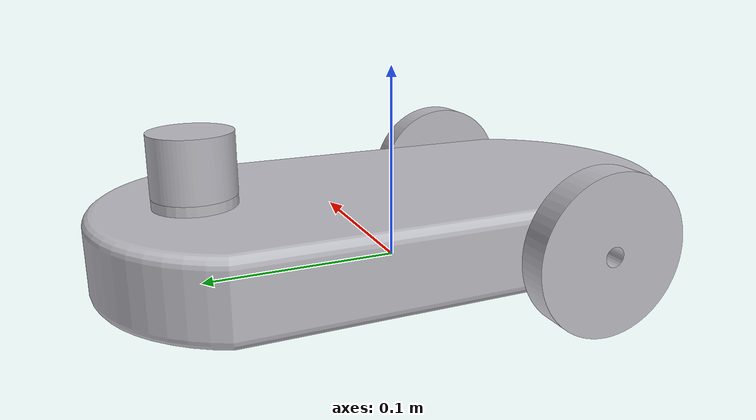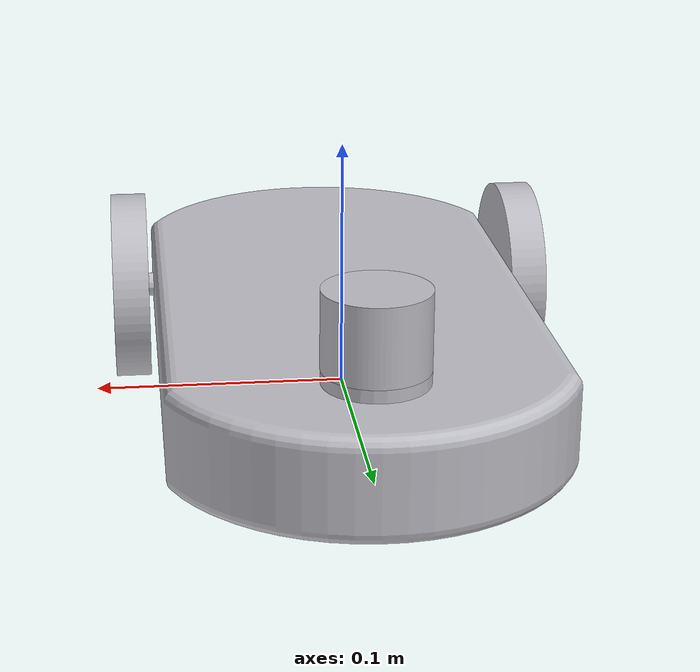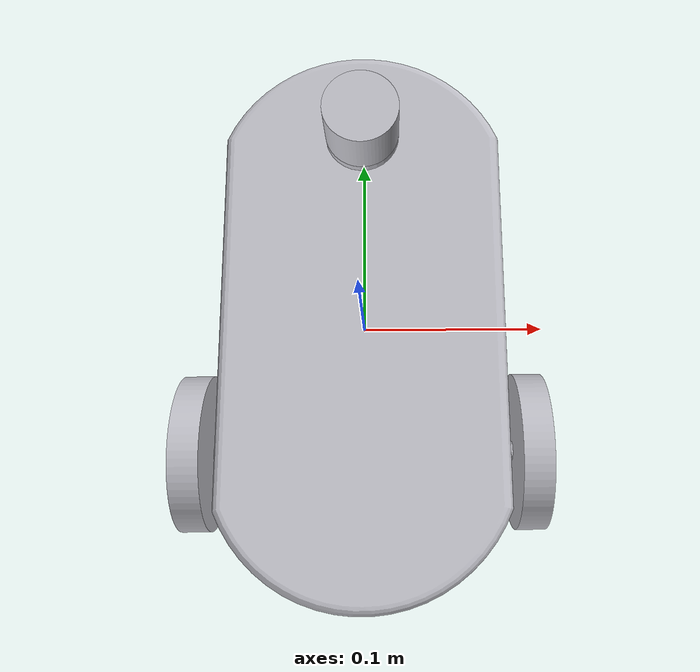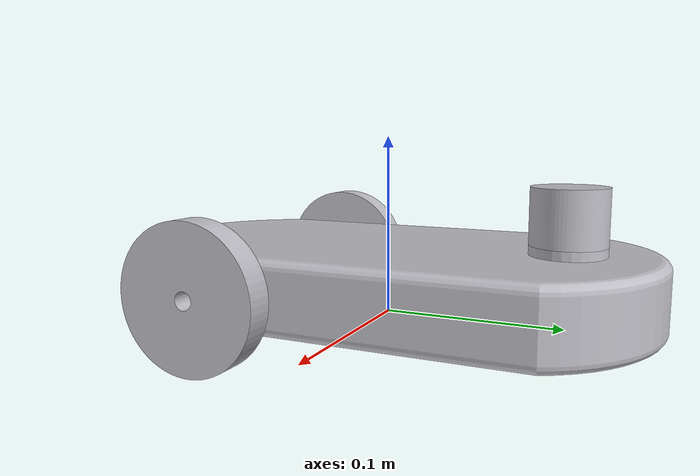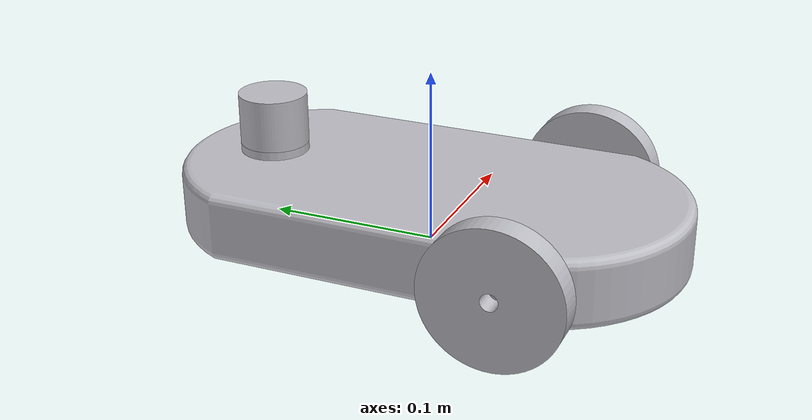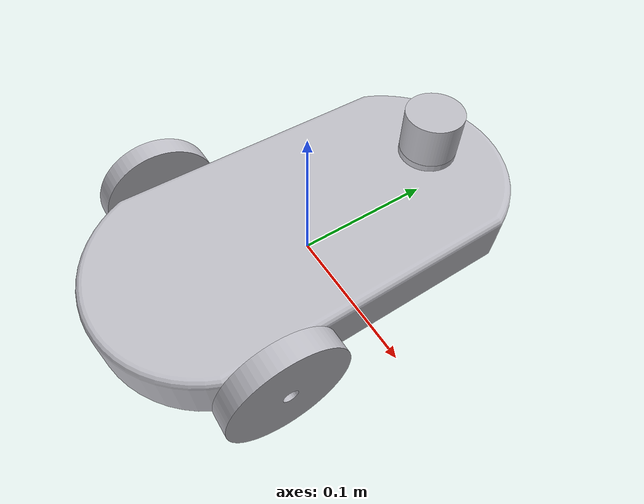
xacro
<?xml version="1.0" ?>
<robot name="car" xmlns:xacro="http://www.ros.org/wiki/xacro">

<xacro:include filename="$(find car_description)/urdf/materials.xacro" />
<xacro:include filename="$(find car_description)/urdf/car.trans" />
<xacro:include filename="$(find car_description)/urdf/car.gazebo" />
<link name="base_link">
  <inertial>
    <origin xyz="4.771085471542193e-10 -0.0006822110356098182 0.02021714330433763" rpy="0 0 0"/>
    <mass value="0.9822687822052116"/>
    <inertia ixx="0.006331" iyy="0.00181" izz="0.00788" ixy="-0.0" iyz="-2.1e-05" ixz="0.0"/>
  </inertial>
  <visual>
    <origin xyz="0 0 0" rpy="0 0 0"/>
    <geometry>
      <mesh filename="file://$(find car_description)/meshes/base_link.stl" scale="0.001 0.001 0.001"/>
    </geometry>
    <material name="silver"/>
  </visual>
  <collision>
    <origin xyz="0 0 0" rpy="0 0 0"/>
    <geometry>
      <mesh filename="file://$(find car_description)/meshes/base_link.stl" scale="0.001 0.001 0.001"/>
    </geometry>
  </collision>
</link>

<link name="left_wheel_1">
  <inertial>
    <origin xyz="-0.007500000000000007 1.49003268057335e-10 1.3877787807814457e-17" rpy="0 0 0"/>
    <mass value="0.040375748783935995"/>
    <inertia ixx="3.3e-05" iyy="1.7e-05" izz="1.7e-05" ixy="0.0" iyz="-0.0" ixz="-0.0"/>
  </inertial>
  <visual>
    <origin xyz="0.0775 0.07 -0.02" rpy="0 0 0"/>
    <geometry>
      <mesh filename="file://$(find car_description)/meshes/left_wheel_1.stl" scale="0.001 0.001 0.001"/>
    </geometry>
    <material name="silver"/>
  </visual>
  <collision>
    <origin xyz="0.0775 0.07 -0.02" rpy="0 0 0"/>
    <geometry>
      <mesh filename="file://$(find car_description)/meshes/left_wheel_1.stl" scale="0.001 0.001 0.001"/>
    </geometry>
  </collision>
</link>

<link name="right_wheel_1">
  <inertial>
    <origin xyz="0.007499999999999979 1.490032958129106e-10 3.8163916471489756e-17" rpy="0 0 0"/>
    <mass value="0.040375748783935995"/>
    <inertia ixx="3.3e-05" iyy="1.7e-05" izz="1.7e-05" ixy="-0.0" iyz="0.0" ixz="-0.0"/>
  </inertial>
  <visual>
    <origin xyz="-0.0775 0.07 -0.02" rpy="0 0 0"/>
    <geometry>
      <mesh filename="file://$(find car_description)/meshes/right_wheel_1.stl" scale="0.001 0.001 0.001"/>
    </geometry>
    <material name="silver"/>
  </visual>
  <collision>
    <origin xyz="-0.0775 0.07 -0.02" rpy="0 0 0"/>
    <geometry>
      <mesh filename="file://$(find car_description)/meshes/right_wheel_1.stl" scale="0.001 0.001 0.001"/>
    </geometry>
  </collision>
</link>

<link name="caster_1">
  <inertial>
    <origin xyz="0.0 0.0 0.0" rpy="0 0 0"/>
    <mass value="0.018229614971230372"/>
    <inertia ixx="3e-06" iyy="3e-06" izz="3e-06" ixy="-0.0" iyz="-0.0" ixz="0.0"/>
  </inertial>
  <visual>
    <origin xyz="-0.0 -0.1 -0.0" rpy="0 0 0"/>
    <geometry>
      <mesh filename="file://$(find car_description)/meshes/caster_1.stl" scale="0.001 0.001 0.001"/>
    </geometry>
    <material name="silver"/>
  </visual>
  <collision>
    <origin xyz="-0.0 -0.1 -0.0" rpy="0 0 0"/>
    <geometry>
      <mesh filename="file://$(find car_description)/meshes/caster_1.stl" scale="0.001 0.001 0.001"/>
    </geometry>
  </collision>
</link>

<link name="lidar_1">
  <inertial>
    <origin xyz="-3.769546289141941e-18 1.3877787807814457e-17 0.015" rpy="0 0 0"/>
    <mass value="0.03996105855366222"/>
    <inertia ixx="7e-06" iyy="7e-06" izz="8e-06" ixy="-0.0" iyz="0.0" ixz="-0.0"/>
  </inertial>
  <visual>
    <origin xyz="-0.0 -0.1 -0.045" rpy="0 0 0"/>
    <geometry>
      <mesh filename="file://$(find car_description)/meshes/lidar_1.stl" scale="0.001 0.001 0.001"/>
    </geometry>
    <material name="silver"/>
  </visual>
  <collision>
    <origin xyz="-0.0 -0.1 -0.045" rpy="0 0 0"/>
    <geometry>
      <mesh filename="file://$(find car_description)/meshes/lidar_1.stl" scale="0.001 0.001 0.001"/>
    </geometry>
  </collision>
</link>

<joint name="Revolute 4" type="continuous">
  <origin xyz="-0.0775 -0.07 0.02" rpy="0 0 0"/>
  <parent link="base_link"/>
  <child link="left_wheel_1"/>
  <axis xyz="-1.0 0.0 0.0"/>
</joint>

<joint name="Revolute 5" type="continuous">
  <origin xyz="0.0775 -0.07 0.02" rpy="0 0 0"/>
  <parent link="base_link"/>
  <child link="right_wheel_1"/>
  <axis xyz="-1.0 0.0 0.0"/>
</joint>

<joint name="Revolute 6" type="continuous">
  <origin xyz="0.0 0.1 0.0" rpy="0 0 0"/>
  <parent link="base_link"/>
  <child link="caster_1"/>
  <axis xyz="-1.0 0.0 0.0"/>
</joint>

<joint name="Rigid 7" type="fixed">
  <origin xyz="0.0 0.1 0.045" rpy="0 0 0"/>
  <parent link="base_link"/>
  <child link="lidar_1"/>
</joint>

<!--http://wiki.ros.org/simulator_gazebo/Tutorials/ListOfMaterials-->
<gazebo reference="base_link">
  <material>Gazebo/WhiteGlow</material>
</gazebo>
<gazebo reference="left_wheel_1">
  <material>Gazebo/SkyBlue</material>
</gazebo>
<gazebo reference="right_wheel_1">
  <material>Gazebo/SkyBlue </material>
</gazebo>
<gazebo reference="caster_1">
  <material>Gazebo/Grey</material>
</gazebo>
<gazebo reference="lidar_1">
  <material>Gazebo/Blue</material>
</gazebo>

<gazebo>
  <plugin filename="libgazebo_ros_diff_drive.so" name="gazebo_base_controller">
    <odometry_frame>odom</odometry_frame>
    <commandTopic>cmd_vel</commandTopic>
    <publish_odom>true</publish_odom>
    <publish_odom_tf>true</publish_odom_tf>
    <update_rate>15.0</update_rate>

    <left_joint>Revolute 4</left_joint>
    <right_joint>Revolute 5</right_joint>

    <wheel_separation>0.155</wheel_separation>
    <wheel_diameter>0.08</wheel_diameter>
    <max_wheel_acceleration>0.5</max_wheel_acceleration>
    <max_wheel_torque>8</max_wheel_torque>
    <robotBaseFrame>base_link</robotBaseFrame>
  </plugin>
</gazebo>

</robot>

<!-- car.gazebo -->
<robot name="car" xmlns:xacro="http://www.ros.org/wiki/xacro" >

<xacro:property name="body_color" value="Gazebo/Silver" />

<gazebo>
  <plugin name="control" filename="libgazebo_ros_control.so"/>
</gazebo>
<gazebo reference="base_link">
  <material>${body_color}</material>
  <mu1>0.2</mu1>
  <mu2>0.2</mu2>
  <self_collide>true</self_collide>
  <gravity>true</gravity>
</gazebo>

<gazebo reference="left_wheel_1">
  <material>${body_color}</material>
  <mu1>0.2</mu1>
  <mu2>0.2</mu2>
  <self_collide>true</self_collide>
</gazebo>

<gazebo reference="right_wheel_1">
  <material>${body_color}</material>
  <mu1>0.2</mu1>
  <mu2>0.2</mu2>
  <self_collide>true</self_collide>
</gazebo>

<gazebo reference="caster_1">
  <material>${body_color}</material>
  <mu1>0.2</mu1>
  <mu2>0.2</mu2>
  <self_collide>true</self_collide>
</gazebo>

<gazebo reference="lidar_1">
  <material>${body_color}</material>
  <mu1>0.2</mu1>
  <mu2>0.2</mu2>
  <self_collide>true</self_collide>
</gazebo>

</robot>
